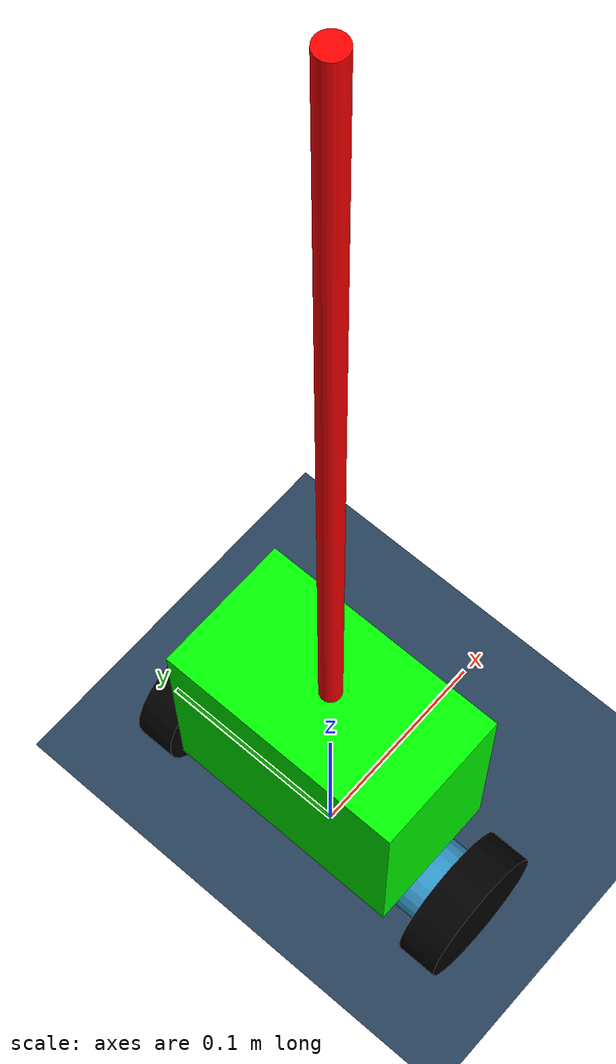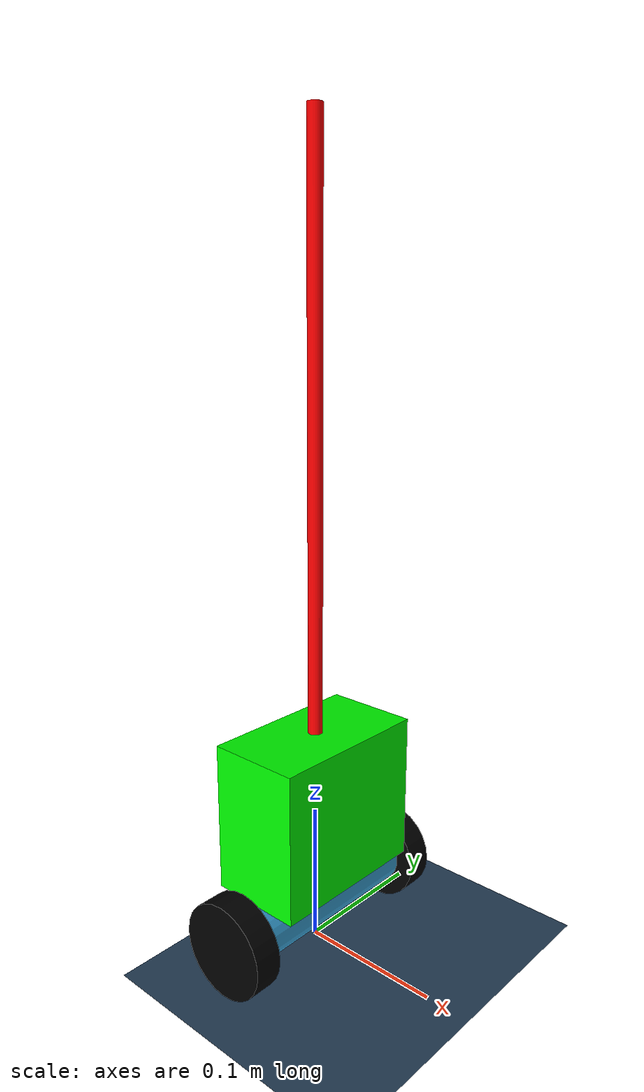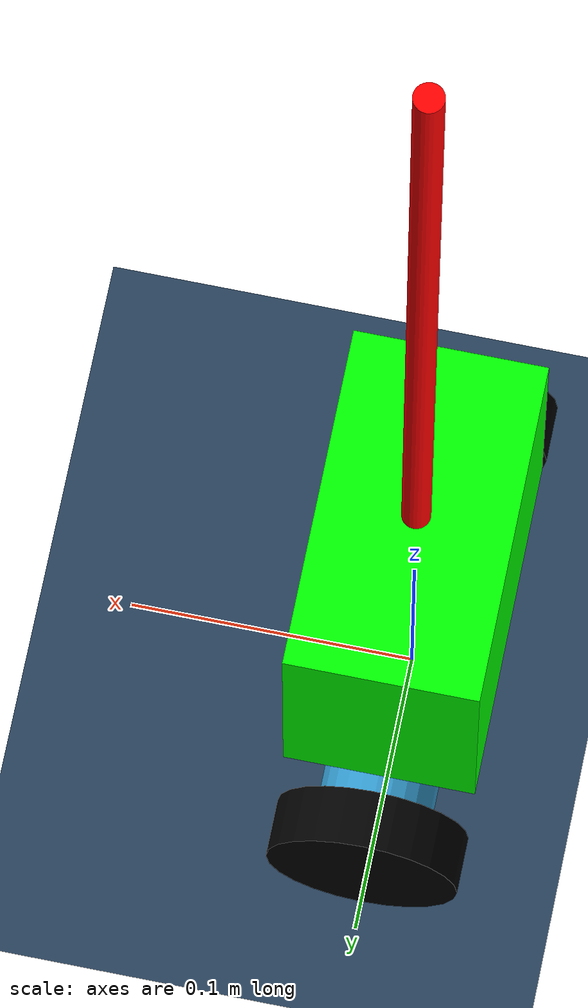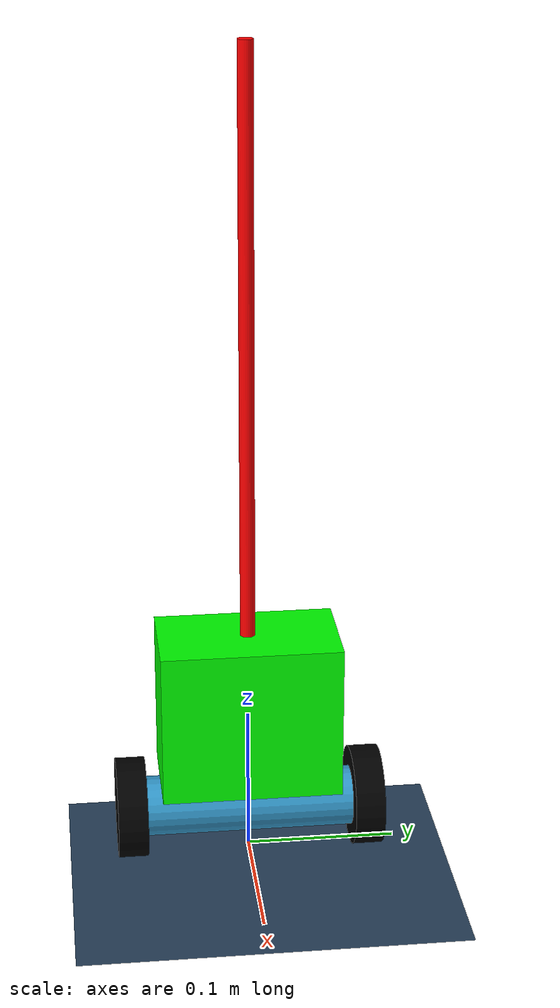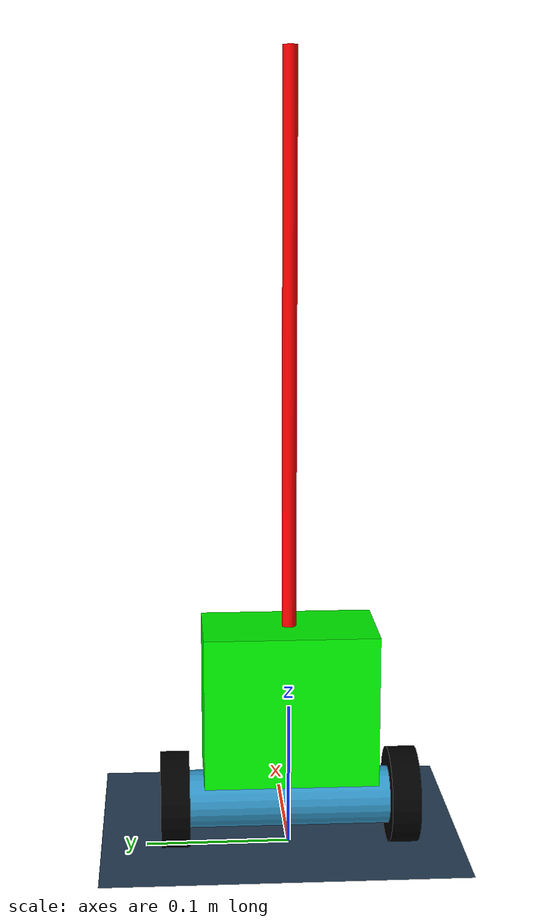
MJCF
<mujoco model="two_link_inverted_pendulum_car">
<!-- 编译器选项  -->
  <compiler
      coordinate="local"
      angle="radian"
      autolimits="true"/>

<!--配置dt-->
  <option
      timestep="0.002"
      integrator="RK4"
      cone="elliptic"/>

 <!--防止穿模,给出摩擦系数-->
<!--上面的部分暂时注释掉,防止额外计算,我们可以通过RL env中限制poles的角度为终止条件,穿模可忽略-->

<!--模板配置-->
  <default>
    <joint damping="0.02" armature="0.001"/>
    <geom condim="3" friction="0.8 0.01 0.005" solref="0.01 1" solimp="0.9 0.95 0.001"/>
  </default>

<!--美观的地板😃-->
  <asset>
    <texture name="grid" type="2d" builtin="checker" rgb1=".1 .2 .3"
     rgb2=".2 .3 .4" width="300" height="300"/>
    <material name="grid" texture="grid" texrepeat="8 8" reflectance=".2"/>
  </asset>

  <worldbody>
    <geom name="ground" size="3 3 .1" type="plane" material="grid" friction="1.2 0.01 0.005"/>

    <light pos="0 0 3"/>

 <!--重量的分配:底盘0.145kg+车身0.755kg+杆子0.1kg ;两轮子0.1kg总计1.1,有待商榷-->
    <body name="chassis" pos="0 0 0.0335">
        <freejoint name="chassis"/>
        <geom name="chassis" type="cylinder" size="0.02 0.08" rgba="0.2 0.6 0.8 1" zaxis="0 1 0" mass="0.290"/>

        <geom name="pole1" type="box" pos="0 0 0.073" size=".0335 0.06 0.053" rgba="0 1 0 1" mass="0.9"/>

        <body name="left_wheel" pos="0 0.08 0">
            <joint name="left_wheel" type="hinge" damping="0.05" armature="0.01" axis="0 1 0"/>
            <geom name="left_wheel" type="cylinder" size="0.0335 0.01" rgba="0 0 0 1" zaxis="0 1 0" friction="5.0 0.02 0.01" solref="0.02 1.2"
          solimp="0.8 0.95 0.001 0.5 2" mass="0.05"/>
        </body>

        <body name="right_wheel" pos="0 -0.08 0">
            <joint name="right_wheel" type="hinge" damping="0.05" armature="0.01" axis="0 1 0"/>
            <geom name="right_wheel" type="cylinder" size="0.0335 0.01" rgba="0 0 0 1" zaxis="0 1 0" friction="5.0 0.02 0.01" solref="0.02 1.2"
          solimp="0.8 0.95 0.001 0.5 2" mass="0.05"/>
        </body>

        <body name="pole2" pos="0 0 0.126">
            <joint name="pole2" type="hinge" axis="0 1 0"/>
            <geom name="pole2" type="cylinder" pos="0 0 0.195" size="0.005 0.195" friction="0.2 0.01 0.005" rgba="1 0 0 1" zaxis="0 0 1" mass="0.1"/>
            <site name="pole2_tip" pos="0 0 0.39" size="0.01" rgba="0 0 0 0"/>
        </body>

        <site name="imu_site" pos="0 0 0.04"/>
    </body>
  </worldbody>

<!--电机,提供力矩,左右轮,电机型号官网找的,Gemini推荐的ctrlrange和gear参数,以及joint中损耗相关-->
  <actuator>
    <motor name="left_motor"  joint="left_wheel"  gear="15" ctrlrange="-30 30"/>
    <motor name="right_motor" joint="right_wheel" gear="15" ctrlrange="-30 30"/>
  </actuator>

<!--模拟传感器,8个变量-->
  <sensor>
    <!--qpos:-->
    <jointpos name="theta_left" joint="left_wheel"/>
    <jointpos name="theta_right" joint="right_wheel"/>
    <!--关于绝对空间的theta!而非相对pole1的!-->
    <framequat name="theta_pole1" objtype="site" objname="imu_site"/>
    <framequat name="theta_pole2" objtype="body" objname="pole2"/>

    <!--qvel:-->
    <jointvel name="theta_left_dot" joint="left_wheel"/>
    <jointvel name="theta_right_dot" joint="right_wheel"/>
    <frameangvel name="theta_pole1_dot" objtype="site" objname="imu_site"/>
    <jointvel name="theta_pole2_dot" joint="pole2"/>

  </sensor>
</mujoco>
